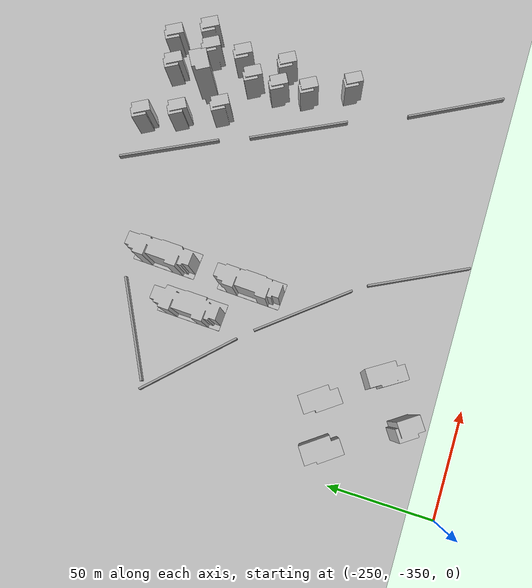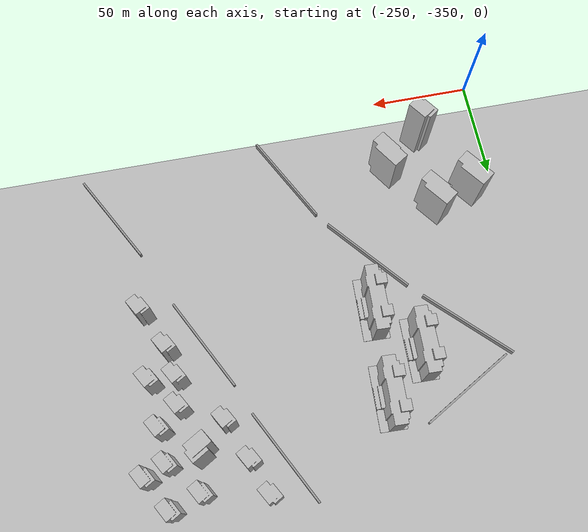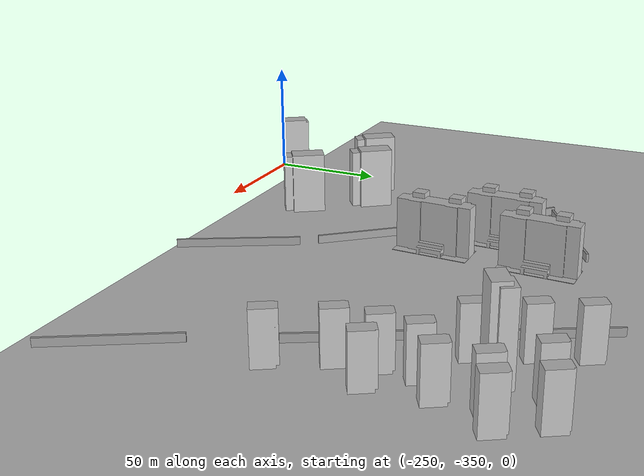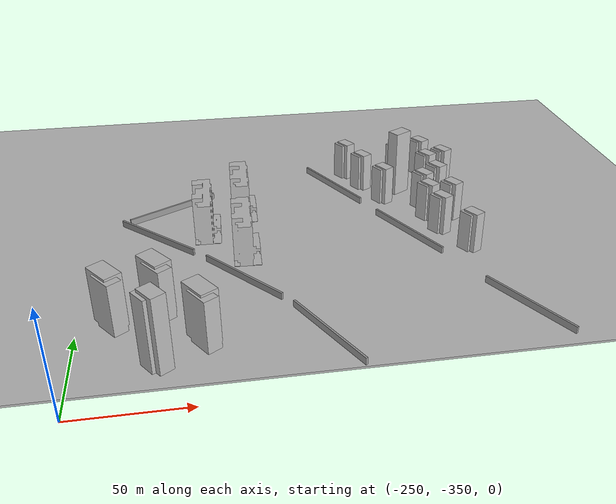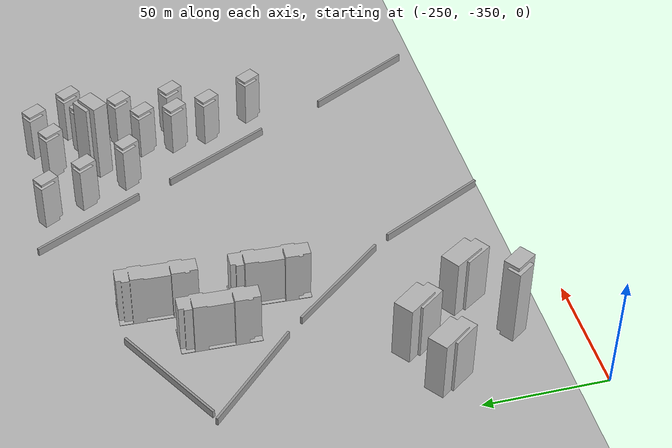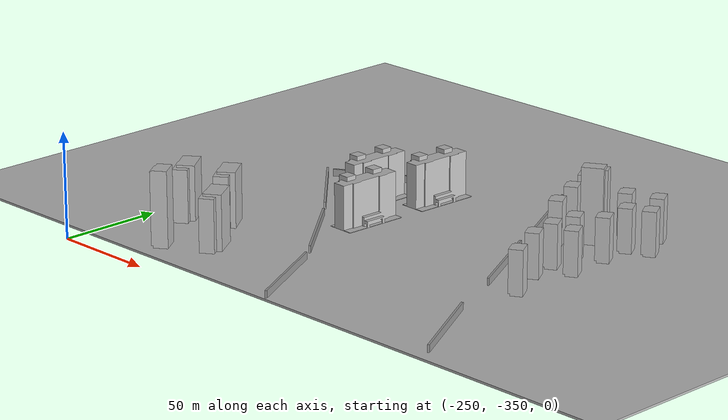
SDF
<sdf version="1.7">
 <world name="default">
  <model name="ground_plane">
   <static>1</static>
   <link name="link">
    <collision name="collision">
     <geometry><mesh><uri>model://ground_plane/scripts/plane.dae</uri><normal>0 0 1</normal></mesh></geometry>
     <surface><friction><ode><mu>100</mu><mu2>50</mu2></ode></friction></surface>
    </collision>
    <visual name="visual">
     <geometry><mesh><uri>model://ground_plane/scripts/plane.dae</uri><normal>0 0 1</normal></mesh></geometry>
     <material>
      <lighting>1</lighting>
      <script><uri>model://ground_plane/scripts/plane.jpg</uri><name>__default__</name></script>
      <shader type="pixel"/>
     </material>
    </visual>
   </link>
  </model>
  <model name="apartment4_clone_55">
   <static>1</static>
   <link name="link_0">
    <inertial>
     <mass>1</mass>
     <inertia>
      <ixx>0.166667</ixx>
      <ixy>0</ixy>
      <ixz>0</ixz>
      <iyy>0.166667</iyy>
      <iyz>0</iyz>
      <izz>0.166667</izz>
     </inertia>
    </inertial>
    <pose>1e-06 -0 0 0 -0 0</pose>
    <visual name="visual">
     <geometry>
      <mesh><uri>model://apartment4/scripts/apartment1.dae</uri><scale>0.14 0.14 0.175</scale></mesh>
     </geometry>
     <material>
      <lighting>1</lighting>
      <script><uri>model://apartment4/scripts/apartment1.jpg</uri><name>__default__</name></script>
      <shader type="pixel"/>
     </material>
    </visual>
    <collision name="collision">
     <geometry>
      <mesh><uri>model://apartment4/scripts/apartment1.dae</uri><scale>0.14 0.14 0.175</scale></mesh>
     </geometry>
     <surface>
      <friction>
       <ode><mu>1</mu><mu2>1</mu2><fdir1>0 0 0</fdir1><slip1>0</slip1><slip2>0</slip2></ode>
       <torsional>
        <coefficient>1</coefficient>
        <patch_radius>0</patch_radius>
        <surface_radius>0</surface_radius>
        <use_patch_radius>1</use_patch_radius>
        <ode><slip>0</slip></ode>
       </torsional>
      </friction>
      <bounce><restitution_coefficient>0</restitution_coefficient><threshold>1e+06</threshold></bounce>
      <contact>
       <collide_without_contact>0</collide_without_contact>
       <collide_without_contact_bitmask>1</collide_without_contact_bitmask>
       <collide_bitmask>1</collide_bitmask>
       <ode>
        <soft_cfm>0</soft_cfm>
        <soft_erp>0.2</soft_erp>
        <kp>1e+13</kp>
        <kd>1</kd>
        <max_vel>0.01</max_vel>
        <min_depth>0</min_depth>
       </ode>
       <bullet>
        <split_impulse>1</split_impulse>
        <split_impulse_penetration_threshold>-0.01</split_impulse_penetration_threshold>
        <soft_cfm>0</soft_cfm>
        <soft_erp>0.2</soft_erp>
        <kp>1e+13</kp>
        <kd>1</kd>
       </bullet>
      </contact>
     </surface>
    </collision>
   </link>
   <static>0</static>
   <pose>-55.9109 -178.593 0 0 -0 0.524325</pose>
  </model>
  <model name="apartment4_clone_56">
   <static>1</static>
   <link name="link_0">
    <inertial>
     <mass>1</mass>
     <inertia>
      <ixx>0.166667</ixx>
      <ixy>0</ixy>
      <ixz>0</ixz>
      <iyy>0.166667</iyy>
      <iyz>0</iyz>
      <izz>0.166667</izz>
     </inertia>
    </inertial>
    <pose>1e-06 -0 0 0 -0 0</pose>
    <visual name="visual">
     <geometry>
      <mesh><uri>model://apartment4/scripts/apartment1.dae</uri><scale>0.14 0.14 0.175</scale></mesh>
     </geometry>
     <material>
      <lighting>1</lighting>
      <script><uri>model://apartment4/scripts/apartment1.jpg</uri><name>__default__</name></script>
      <shader type="pixel"/>
     </material>
    </visual>
    <collision name="collision">
     <geometry>
      <mesh><uri>model://apartment4/scripts/apartment1.dae</uri><scale>0.14 0.14 0.175</scale></mesh>
     </geometry>
     <surface>
      <friction>
       <ode><mu>1</mu><mu2>1</mu2><fdir1>0 0 0</fdir1><slip1>0</slip1><slip2>0</slip2></ode>
       <torsional>
        <coefficient>1</coefficient>
        <patch_radius>0</patch_radius>
        <surface_radius>0</surface_radius>
        <use_patch_radius>1</use_patch_radius>
        <ode><slip>0</slip></ode>
       </torsional>
      </friction>
      <bounce><restitution_coefficient>0</restitution_coefficient><threshold>1e+06</threshold></bounce>
      <contact>
       <collide_without_contact>0</collide_without_contact>
       <collide_without_contact_bitmask>1</collide_without_contact_bitmask>
       <collide_bitmask>1</collide_bitmask>
       <ode>
        <soft_cfm>0</soft_cfm>
        <soft_erp>0.2</soft_erp>
        <kp>1e+13</kp>
        <kd>1</kd>
        <max_vel>0.01</max_vel>
        <min_depth>0</min_depth>
       </ode>
       <bullet>
        <split_impulse>1</split_impulse>
        <split_impulse_penetration_threshold>-0.01</split_impulse_penetration_threshold>
        <soft_cfm>0</soft_cfm>
        <soft_erp>0.2</soft_erp>
        <kp>1e+13</kp>
        <kd>1</kd>
       </bullet>
      </contact>
     </surface>
    </collision>
   </link>
   <static>0</static>
   <pose>-64.9559 -163.01 0 0 -0 0.524325</pose>
  </model>
  <model name="apartment4_clone_62">
   <static>1</static>
   <link name="link_0">
    <inertial>
     <mass>1</mass>
     <inertia>
      <ixx>0.166667</ixx>
      <ixy>0</ixy>
      <ixz>0</ixz>
      <iyy>0.166667</iyy>
      <iyz>0</iyz>
      <izz>0.166667</izz>
     </inertia>
    </inertial>
    <pose>1e-06 -0 0 0 -0 0</pose>
    <visual name="visual">
     <geometry>
      <mesh><uri>model://apartment4/scripts/apartment1.dae</uri><scale>0.14 0.14 0.175</scale></mesh>
     </geometry>
     <material>
      <lighting>1</lighting>
      <script><uri>model://apartment4/scripts/apartment1.jpg</uri><name>__default__</name></script>
      <shader type="pixel"/>
     </material>
    </visual>
    <collision name="collision">
     <geometry>
      <mesh><uri>model://apartment4/scripts/apartment1.dae</uri><scale>0.14 0.14 0.175</scale></mesh>
     </geometry>
     <surface>
      <friction>
       <ode><mu>1</mu><mu2>1</mu2><fdir1>0 0 0</fdir1><slip1>0</slip1><slip2>0</slip2></ode>
       <torsional>
        <coefficient>1</coefficient>
        <patch_radius>0</patch_radius>
        <surface_radius>0</surface_radius>
        <use_patch_radius>1</use_patch_radius>
        <ode><slip>0</slip></ode>
       </torsional>
      </friction>
      <bounce><restitution_coefficient>0</restitution_coefficient><threshold>1e+06</threshold></bounce>
      <contact>
       <collide_without_contact>0</collide_without_contact>
       <collide_without_contact_bitmask>1</collide_without_contact_bitmask>
       <collide_bitmask>1</collide_bitmask>
       <ode>
        <soft_cfm>0</soft_cfm>
        <soft_erp>0.2</soft_erp>
        <kp>1e+13</kp>
        <kd>1</kd>
        <max_vel>0.01</max_vel>
        <min_depth>0</min_depth>
       </ode>
       <bullet>
        <split_impulse>1</split_impulse>
        <split_impulse_penetration_threshold>-0.01</split_impulse_penetration_threshold>
        <soft_cfm>0</soft_cfm>
        <soft_erp>0.2</soft_erp>
        <kp>1e+13</kp>
        <kd>1</kd>
       </bullet>
      </contact>
     </surface>
    </collision>
   </link>
   <static>0</static>
   <pose>-63.3477 -255.633 0 0 -0 0.524325</pose>
  </model>
  <model name="apartment4_clone_63">
   <static>1</static>
   <link name="link_0">
    <inertial>
     <mass>1</mass>
     <inertia>
      <ixx>0.166667</ixx>
      <ixy>0</ixy>
      <ixz>0</ixz>
      <iyy>0.166667</iyy>
      <iyz>0</iyz>
      <izz>0.166667</izz>
     </inertia>
    </inertial>
    <pose>1e-06 -0 0 0 -0 0</pose>
    <visual name="visual">
     <geometry>
      <mesh><uri>model://apartment4/scripts/apartment1.dae</uri><scale>0.14 0.14 0.175</scale></mesh>
     </geometry>
     <material>
      <lighting>1</lighting>
      <script><uri>model://apartment4/scripts/apartment1.jpg</uri><name>__default__</name></script>
      <shader type="pixel"/>
     </material>
    </visual>
    <collision name="collision">
     <geometry>
      <mesh><uri>model://apartment4/scripts/apartment1.dae</uri><scale>0.14 0.14 0.175</scale></mesh>
     </geometry>
     <surface>
      <friction>
       <ode><mu>1</mu><mu2>1</mu2><fdir1>0 0 0</fdir1><slip1>0</slip1><slip2>0</slip2></ode>
       <torsional>
        <coefficient>1</coefficient>
        <patch_radius>0</patch_radius>
        <surface_radius>0</surface_radius>
        <use_patch_radius>1</use_patch_radius>
        <ode><slip>0</slip></ode>
       </torsional>
      </friction>
      <bounce><restitution_coefficient>0</restitution_coefficient><threshold>1e+06</threshold></bounce>
      <contact>
       <collide_without_contact>0</collide_without_contact>
       <collide_without_contact_bitmask>1</collide_without_contact_bitmask>
       <collide_bitmask>1</collide_bitmask>
       <ode>
        <soft_cfm>0</soft_cfm>
        <soft_erp>0.2</soft_erp>
        <kp>1e+13</kp>
        <kd>1</kd>
        <max_vel>0.01</max_vel>
        <min_depth>0</min_depth>
       </ode>
       <bullet>
        <split_impulse>1</split_impulse>
        <split_impulse_penetration_threshold>-0.01</split_impulse_penetration_threshold>
        <soft_cfm>0</soft_cfm>
        <soft_erp>0.2</soft_erp>
        <kp>1e+13</kp>
        <kd>1</kd>
       </bullet>
      </contact>
     </surface>
    </collision>
   </link>
   <static>0</static>
   <pose>-72.7914 -235.527 0 0 -0 0.524325</pose>
  </model>
  <model name="apartment4_clone_64">
   <static>1</static>
   <link name="link_0">
    <inertial>
     <mass>1</mass>
     <inertia>
      <ixx>0.166667</ixx>
      <ixy>0</ixy>
      <ixz>0</ixz>
      <iyy>0.166667</iyy>
      <iyz>0</iyz>
      <izz>0.166667</izz>
     </inertia>
    </inertial>
    <pose>1e-06 -0 0 0 -0 0</pose>
    <visual name="visual">
     <geometry>
      <mesh><uri>model://apartment4/scripts/apartment1.dae</uri><scale>0.14 0.14 0.175</scale></mesh>
     </geometry>
     <material>
      <lighting>1</lighting>
      <script><uri>model://apartment4/scripts/apartment1.jpg</uri><name>__default__</name></script>
      <shader type="pixel"/>
     </material>
    </visual>
    <collision name="collision">
     <geometry>
      <mesh><uri>model://apartment4/scripts/apartment1.dae</uri><scale>0.14 0.14 0.175</scale></mesh>
     </geometry>
     <surface>
      <friction>
       <ode><mu>1</mu><mu2>1</mu2><fdir1>0 0 0</fdir1><slip1>0</slip1><slip2>0</slip2></ode>
       <torsional>
        <coefficient>1</coefficient>
        <patch_radius>0</patch_radius>
        <surface_radius>0</surface_radius>
        <use_patch_radius>1</use_patch_radius>
        <ode><slip>0</slip></ode>
       </torsional>
      </friction>
      <bounce><restitution_coefficient>0</restitution_coefficient><threshold>1e+06</threshold></bounce>
      <contact>
       <collide_without_contact>0</collide_without_contact>
       <collide_without_contact_bitmask>1</collide_without_contact_bitmask>
       <collide_bitmask>1</collide_bitmask>
       <ode>
        <soft_cfm>0</soft_cfm>
        <soft_erp>0.2</soft_erp>
        <kp>1e+13</kp>
        <kd>1</kd>
        <max_vel>0.01</max_vel>
        <min_depth>0</min_depth>
       </ode>
       <bullet>
        <split_impulse>1</split_impulse>
        <split_impulse_penetration_threshold>-0.01</split_impulse_penetration_threshold>
        <soft_cfm>0</soft_cfm>
        <soft_erp>0.2</soft_erp>
        <kp>1e+13</kp>
        <kd>1</kd>
       </bullet>
      </contact>
     </surface>
    </collision>
   </link>
   <static>0</static>
   <pose>-75.3967 -220.997 0 0 -0 0.524325</pose>
  </model>
  <model name="apartment4_clone_65">
   <static>1</static>
   <link name="link_0">
    <inertial>
     <mass>1</mass>
     <inertia>
      <ixx>0.166667</ixx>
      <ixy>0</ixy>
      <ixz>0</ixz>
      <iyy>0.166667</iyy>
      <iyz>0</iyz>
      <izz>0.166667</izz>
     </inertia>
    </inertial>
    <pose>1e-06 -0 0 0 -0 0</pose>
    <visual name="visual">
     <geometry>
      <mesh><uri>model://apartment4/scripts/apartment1.dae</uri><scale>0.14 0.14 0.175</scale></mesh>
     </geometry>
     <material>
      <lighting>1</lighting>
      <script><uri>model://apartment4/scripts/apartment1.jpg</uri><name>__default__</name></script>
      <shader type="pixel"/>
     </material>
    </visual>
    <collision name="collision">
     <geometry>
      <mesh><uri>model://apartment4/scripts/apartment1.dae</uri><scale>0.14 0.14 0.175</scale></mesh>
     </geometry>
     <surface>
      <friction>
       <ode><mu>1</mu><mu2>1</mu2><fdir1>0 0 0</fdir1><slip1>0</slip1><slip2>0</slip2></ode>
       <torsional>
        <coefficient>1</coefficient>
        <patch_radius>0</patch_radius>
        <surface_radius>0</surface_radius>
        <use_patch_radius>1</use_patch_radius>
        <ode><slip>0</slip></ode>
       </torsional>
      </friction>
      <bounce><restitution_coefficient>0</restitution_coefficient><threshold>1e+06</threshold></bounce>
      <contact>
       <collide_without_contact>0</collide_without_contact>
       <collide_without_contact_bitmask>1</collide_without_contact_bitmask>
       <collide_bitmask>1</collide_bitmask>
       <ode>
        <soft_cfm>0</soft_cfm>
        <soft_erp>0.2</soft_erp>
        <kp>1e+13</kp>
        <kd>1</kd>
        <max_vel>0.01</max_vel>
        <min_depth>0</min_depth>
       </ode>
       <bullet>
        <split_impulse>1</split_impulse>
        <split_impulse_penetration_threshold>-0.01</split_impulse_penetration_threshold>
        <soft_cfm>0</soft_cfm>
        <soft_erp>0.2</soft_erp>
        <kp>1e+13</kp>
        <kd>1</kd>
       </bullet>
      </contact>
     </surface>
    </collision>
   </link>
   <static>0</static>
   <pose>-94.4173 -197.218 0 0 -0 0.524325</pose>
  </model>
  <model name="apartment4_clone_66">
   <static>1</static>
   <link name="link_0">
    <inertial>
     <mass>1</mass>
     <inertia>
      <ixx>0.166667</ixx>
      <ixy>0</ixy>
      <ixz>0</ixz>
      <iyy>0.166667</iyy>
      <iyz>0</iyz>
      <izz>0.166667</izz>
     </inertia>
    </inertial>
    <pose>1e-06 -0 0 0 -0 0</pose>
    <visual name="visual">
     <geometry>
      <mesh><uri>model://apartment4/scripts/apartment1.dae</uri><scale>0.14 0.14 0.175</scale></mesh>
     </geometry>
     <material>
      <lighting>1</lighting>
      <script><uri>model://apartment4/scripts/apartment1.jpg</uri><name>__default__</name></script>
      <shader type="pixel"/>
     </material>
    </visual>
    <collision name="collision">
     <geometry>
      <mesh><uri>model://apartment4/scripts/apartment1.dae</uri><scale>0.14 0.14 0.175</scale></mesh>
     </geometry>
     <surface>
      <friction>
       <ode><mu>1</mu><mu2>1</mu2><fdir1>0 0 0</fdir1><slip1>0</slip1><slip2>0</slip2></ode>
       <torsional>
        <coefficient>1</coefficient>
        <patch_radius>0</patch_radius>
        <surface_radius>0</surface_radius>
        <use_patch_radius>1</use_patch_radius>
        <ode><slip>0</slip></ode>
       </torsional>
      </friction>
      <bounce><restitution_coefficient>0</restitution_coefficient><threshold>1e+06</threshold></bounce>
      <contact>
       <collide_without_contact>0</collide_without_contact>
       <collide_without_contact_bitmask>1</collide_without_contact_bitmask>
       <collide_bitmask>1</collide_bitmask>
       <ode>
        <soft_cfm>0</soft_cfm>
        <soft_erp>0.2</soft_erp>
        <kp>1e+13</kp>
        <kd>1</kd>
        <max_vel>0.01</max_vel>
        <min_depth>0</min_depth>
       </ode>
       <bullet>
        <split_impulse>1</split_impulse>
        <split_impulse_penetration_threshold>-0.01</split_impulse_penetration_threshold>
        <soft_cfm>0</soft_cfm>
        <soft_erp>0.2</soft_erp>
        <kp>1e+13</kp>
        <kd>1</kd>
       </bullet>
      </contact>
     </surface>
    </collision>
   </link>
   <static>0</static>
   <pose>-102.556 -178.199 0 0 -0 0.524325</pose>
  </model>
  <model name="apartment4_clone_67">
   <static>1</static>
   <link name="link_0">
    <inertial>
     <mass>1</mass>
     <inertia>
      <ixx>0.166667</ixx>
      <ixy>0</ixy>
      <ixz>0</ixz>
      <iyy>0.166667</iyy>
      <iyz>0</iyz>
      <izz>0.166667</izz>
     </inertia>
    </inertial>
    <pose>1e-06 -0 0 0 -0 0</pose>
    <visual name="visual">
     <geometry>
      <mesh><uri>model://apartment4/scripts/apartment1.dae</uri><scale>0.14 0.14 0.175</scale></mesh>
     </geometry>
     <material>
      <lighting>1</lighting>
      <script><uri>model://apartment4/scripts/apartment1.jpg</uri><name>__default__</name></script>
      <shader type="pixel"/>
     </material>
    </visual>
    <collision name="collision">
     <geometry>
      <mesh><uri>model://apartment4/scripts/apartment1.dae</uri><scale>0.14 0.14 0.175</scale></mesh>
     </geometry>
     <surface>
      <friction>
       <ode><mu>1</mu><mu2>1</mu2><fdir1>0 0 0</fdir1><slip1>0</slip1><slip2>0</slip2></ode>
       <torsional>
        <coefficient>1</coefficient>
        <patch_radius>0</patch_radius>
        <surface_radius>0</surface_radius>
        <use_patch_radius>1</use_patch_radius>
        <ode><slip>0</slip></ode>
       </torsional>
      </friction>
      <bounce><restitution_coefficient>0</restitution_coefficient><threshold>1e+06</threshold></bounce>
      <contact>
       <collide_without_contact>0</collide_without_contact>
       <collide_without_contact_bitmask>1</collide_without_contact_bitmask>
       <collide_bitmask>1</collide_bitmask>
       <ode>
        <soft_cfm>0</soft_cfm>
        <soft_erp>0.2</soft_erp>
        <kp>1e+13</kp>
        <kd>1</kd>
        <max_vel>0.01</max_vel>
        <min_depth>0</min_depth>
       </ode>
       <bullet>
        <split_impulse>1</split_impulse>
        <split_impulse_penetration_threshold>-0.01</split_impulse_penetration_threshold>
        <soft_cfm>0</soft_cfm>
        <soft_erp>0.2</soft_erp>
        <kp>1e+13</kp>
        <kd>1</kd>
       </bullet>
      </contact>
     </surface>
    </collision>
   </link>
   <static>0</static>
   <pose>-108.98 -161.791 0 0 -0 0.524325</pose>
  </model>
  <model name="apartment4_clone_69">
   <static>1</static>
   <link name="link_0">
    <inertial>
     <mass>1</mass>
     <inertia>
      <ixx>0.166667</ixx>
      <ixy>0</ixy>
      <ixz>0</ixz>
      <iyy>0.166667</iyy>
      <iyz>0</iyz>
      <izz>0.166667</izz>
     </inertia>
    </inertial>
    <pose>1e-06 -0 0 0 -0 0</pose>
    <visual name="visual">
     <geometry>
      <mesh><uri>model://apartment4/scripts/apartment1.dae</uri><scale>0.14 0.14 0.175</scale></mesh>
     </geometry>
     <material>
      <lighting>1</lighting>
      <script><uri>model://apartment4/scripts/apartment1.jpg</uri><name>__default__</name></script>
      <shader type="pixel"/>
     </material>
    </visual>
    <collision name="collision">
     <geometry>
      <mesh><uri>model://apartment4/scripts/apartment1.dae</uri><scale>0.14 0.14 0.175</scale></mesh>
     </geometry>
     <surface>
      <friction>
       <ode><mu>1</mu><mu2>1</mu2><fdir1>0 0 0</fdir1><slip1>0</slip1><slip2>0</slip2></ode>
       <torsional>
        <coefficient>1</coefficient>
        <patch_radius>0</patch_radius>
        <surface_radius>0</surface_radius>
        <use_patch_radius>1</use_patch_radius>
        <ode><slip>0</slip></ode>
       </torsional>
      </friction>
      <bounce><restitution_coefficient>0</restitution_coefficient><threshold>1e+06</threshold></bounce>
      <contact>
       <collide_without_contact>0</collide_without_contact>
       <collide_without_contact_bitmask>1</collide_without_contact_bitmask>
       <collide_bitmask>1</collide_bitmask>
       <ode>
        <soft_cfm>0</soft_cfm>
        <soft_erp>0.2</soft_erp>
        <kp>1e+13</kp>
        <kd>1</kd>
        <max_vel>0.01</max_vel>
        <min_depth>0</min_depth>
       </ode>
       <bullet>
        <split_impulse>1</split_impulse>
        <split_impulse_penetration_threshold>-0.01</split_impulse_penetration_threshold>
        <soft_cfm>0</soft_cfm>
        <soft_erp>0.2</soft_erp>
        <kp>1e+13</kp>
        <kd>1</kd>
       </bullet>
      </contact>
     </surface>
    </collision>
   </link>
   <static>0</static>
   <pose>-79.6051 -167.798 0 0 -0 0.524325</pose>
  </model>
  <model name="apartment4_clone_72">
   <static>1</static>
   <link name="link_0">
    <inertial>
     <mass>1</mass>
     <inertia>
      <ixx>0.166667</ixx>
      <ixy>0</ixy>
      <ixz>0</ixz>
      <iyy>0.166667</iyy>
      <iyz>0</iyz>
      <izz>0.166667</izz>
     </inertia>
    </inertial>
    <pose>1e-06 -0 0 0 -0 0</pose>
    <visual name="visual">
     <geometry>
      <mesh><uri>model://apartment4/scripts/apartment1.dae</uri><scale>0.14 0.14 0.175</scale></mesh>
     </geometry>
     <material>
      <lighting>1</lighting>
      <script><uri>model://apartment4/scripts/apartment1.jpg</uri><name>__default__</name></script>
      <shader type="pixel"/>
     </material>
    </visual>
    <collision name="collision">
     <geometry>
      <mesh><uri>model://apartment4/scripts/apartment1.dae</uri><scale>0.14 0.14 0.175</scale></mesh>
     </geometry>
     <surface>
      <friction>
       <ode><mu>1</mu><mu2>1</mu2><fdir1>0 0 0</fdir1><slip1>0</slip1><slip2>0</slip2></ode>
       <torsional>
        <coefficient>1</coefficient>
        <patch_radius>0</patch_radius>
        <surface_radius>0</surface_radius>
        <use_patch_radius>1</use_patch_radius>
        <ode><slip>0</slip></ode>
       </torsional>
      </friction>
      <bounce><restitution_coefficient>0</restitution_coefficient><threshold>1e+06</threshold></bounce>
      <contact>
       <collide_without_contact>0</collide_without_contact>
       <collide_without_contact_bitmask>1</collide_without_contact_bitmask>
       <collide_bitmask>1</collide_bitmask>
       <ode>
        <soft_cfm>0</soft_cfm>
        <soft_erp>0.2</soft_erp>
        <kp>1e+13</kp>
        <kd>1</kd>
        <max_vel>0.01</max_vel>
        <min_depth>0</min_depth>
       </ode>
       <bullet>
        <split_impulse>1</split_impulse>
        <split_impulse_penetration_threshold>-0.01</split_impulse_penetration_threshold>
        <soft_cfm>0</soft_cfm>
        <soft_erp>0.2</soft_erp>
        <kp>1e+13</kp>
        <kd>1</kd>
       </bullet>
      </contact>
     </surface>
    </collision>
   </link>
   <static>0</static>
   <pose>-74.6976 -207.39 0 0 -0 0.524325</pose>
  </model>
  <model name="apartment4_clone_73">
   <static>1</static>
   <link name="link_0">
    <inertial>
     <mass>1</mass>
     <inertia>
      <ixx>0.166667</ixx>
      <ixy>0</ixy>
      <ixz>0</ixz>
      <iyy>0.166667</iyy>
      <iyz>0</iyz>
      <izz>0.166667</izz>
     </inertia>
    </inertial>
    <pose>1e-06 -0 0 0 -0 0</pose>
    <visual name="visual">
     <geometry>
      <mesh><uri>model://apartment4/scripts/apartment1.dae</uri><scale>0.14 0.14 0.175</scale></mesh>
     </geometry>
     <material>
      <lighting>1</lighting>
      <script><uri>model://apartment4/scripts/apartment1.jpg</uri><name>__default__</name></script>
      <shader type="pixel"/>
     </material>
    </visual>
    <collision name="collision">
     <geometry>
      <mesh><uri>model://apartment4/scripts/apartment1.dae</uri><scale>0.14 0.14 0.175</scale></mesh>
     </geometry>
     <surface>
      <friction>
       <ode><mu>1</mu><mu2>1</mu2><fdir1>0 0 0</fdir1><slip1>0</slip1><slip2>0</slip2></ode>
       <torsional>
        <coefficient>1</coefficient>
        <patch_radius>0</patch_radius>
        <surface_radius>0</surface_radius>
        <use_patch_radius>1</use_patch_radius>
        <ode><slip>0</slip></ode>
       </torsional>
      </friction>
      <bounce><restitution_coefficient>0</restitution_coefficient><threshold>1e+06</threshold></bounce>
      <contact>
       <collide_without_contact>0</collide_without_contact>
       <collide_without_contact_bitmask>1</collide_without_contact_bitmask>
       <collide_bitmask>1</collide_bitmask>
       <ode>
        <soft_cfm>0</soft_cfm>
        <soft_erp>0.2</soft_erp>
        <kp>1e+13</kp>
        <kd>1</kd>
        <max_vel>0.01</max_vel>
        <min_depth>0</min_depth>
       </ode>
       <bullet>
        <split_impulse>1</split_impulse>
        <split_impulse_penetration_threshold>-0.01</split_impulse_penetration_threshold>
        <soft_cfm>0</soft_cfm>
        <soft_erp>0.2</soft_erp>
        <kp>1e+13</kp>
        <kd>1</kd>
       </bullet>
      </contact>
     </surface>
    </collision>
   </link>
   <static>0</static>
   <pose>-62.9649 -221.452 0 0 -0 0.524325</pose>
  </model>
  <model name="apartment4_clone_83">
   <static>1</static>
   <link name="link_0">
    <inertial>
     <mass>1</mass>
     <inertia>
      <ixx>0.166667</ixx>
      <ixy>0</ixy>
      <ixz>0</ixz>
      <iyy>0.166667</iyy>
      <iyz>0</iyz>
      <izz>0.166667</izz>
     </inertia>
    </inertial>
    <pose>1e-06 -0 0 0 -0 0</pose>
    <visual name="visual">
     <geometry>
      <mesh><uri>model://apartment4/scripts/apartment1.dae</uri><scale>0.14 0.14 0.175</scale></mesh>
     </geometry>
     <material>
      <lighting>1</lighting>
      <script><uri>model://apartment4/scripts/apartment1.jpg</uri><name>__default__</name></script>
      <shader type="pixel"/>
     </material>
    </visual>
    <collision name="collision">
     <geometry>
      <mesh><uri>model://apartment4/scripts/apartment1.dae</uri><scale>0.14 0.14 0.175</scale></mesh>
     </geometry>
     <surface>
      <friction>
       <ode><mu>1</mu><mu2>1</mu2><fdir1>0 0 0</fdir1><slip1>0</slip1><slip2>0</slip2></ode>
       <torsional>
        <coefficient>1</coefficient>
        <patch_radius>0</patch_radius>
        <surface_radius>0</surface_radius>
        <use_patch_radius>1</use_patch_radius>
        <ode><slip>0</slip></ode>
       </torsional>
      </friction>
      <bounce><restitution_coefficient>0</restitution_coefficient><threshold>1e+06</threshold></bounce>
      <contact>
       <collide_without_contact>0</collide_without_contact>
       <collide_without_contact_bitmask>1</collide_without_contact_bitmask>
       <collide_bitmask>1</collide_bitmask>
       <ode>
        <soft_cfm>0</soft_cfm>
        <soft_erp>0.2</soft_erp>
        <kp>1e+13</kp>
        <kd>1</kd>
        <max_vel>0.01</max_vel>
        <min_depth>0</min_depth>
       </ode>
       <bullet>
        <split_impulse>1</split_impulse>
        <split_impulse_penetration_threshold>-0.01</split_impulse_penetration_threshold>
        <soft_cfm>0</soft_cfm>
        <soft_erp>0.2</soft_erp>
        <kp>1e+13</kp>
        <kd>1</kd>
       </bullet>
      </contact>
     </surface>
    </collision>
   </link>
   <static>0</static>
   <pose>-66.1605 -182.887 0 0 -0 0.524325</pose>
  </model>
  <model name="apartment4_clone_84">
   <static>1</static>
   <link name="link_0">
    <inertial>
     <mass>1</mass>
     <inertia>
      <ixx>0.166667</ixx>
      <ixy>0</ixy>
      <ixz>0</ixz>
      <iyy>0.166667</iyy>
      <iyz>0</iyz>
      <izz>0.166667</izz>
     </inertia>
    </inertial>
    <pose>1e-06 -0 0 0 -0 0</pose>
    <visual name="visual">
     <geometry>
      <mesh><uri>model://apartment4/scripts/apartment1.dae</uri><scale>0.14 0.14 0.175</scale></mesh>
     </geometry>
     <material>
      <lighting>1</lighting>
      <script><uri>model://apartment4/scripts/apartment1.jpg</uri><name>__default__</name></script>
      <shader type="pixel"/>
     </material>
    </visual>
    <collision name="collision">
     <geometry>
      <mesh><uri>model://apartment4/scripts/apartment1.dae</uri><scale>0.14 0.14 0.175</scale></mesh>
     </geometry>
     <surface>
      <friction>
       <ode><mu>1</mu><mu2>1</mu2><fdir1>0 0 0</fdir1><slip1>0</slip1><slip2>0</slip2></ode>
       <torsional>
        <coefficient>1</coefficient>
        <patch_radius>0</patch_radius>
        <surface_radius>0</surface_radius>
        <use_patch_radius>1</use_patch_radius>
        <ode><slip>0</slip></ode>
       </torsional>
      </friction>
      <bounce><restitution_coefficient>0</restitution_coefficient><threshold>1e+06</threshold></bounce>
      <contact>
       <collide_without_contact>0</collide_without_contact>
       <collide_without_contact_bitmask>1</collide_without_contact_bitmask>
       <collide_bitmask>1</collide_bitmask>
       <ode>
        <soft_cfm>0</soft_cfm>
        <soft_erp>0.2</soft_erp>
        <kp>1e+13</kp>
        <kd>1</kd>
        <max_vel>0.01</max_vel>
        <min_depth>0</min_depth>
       </ode>
       <bullet>
        <split_impulse>1</split_impulse>
        <split_impulse_penetration_threshold>-0.01</split_impulse_penetration_threshold>
        <soft_cfm>0</soft_cfm>
        <soft_erp>0.2</soft_erp>
        <kp>1e+13</kp>
        <kd>1</kd>
       </bullet>
      </contact>
     </surface>
    </collision>
   </link>
   <static>0</static>
   <pose>-64.8141 -199.07 0 0 -0 0.524325</pose>
  </model>
  <model name="grey_wall">
   <static>1</static>
   <link name="link">
    <pose>0 0 1.4 0 -0 0</pose>
    <collision name="collision"><geometry><box><size>50.5 1 4</size></box></geometry></collision>
    <visual name="visual">
     <cast_shadows>0</cast_shadows>
     <geometry><box><size>50.5 1 4</size></box></geometry>
     <material>
      <script>
       <uri>model://grey_wall/materials/scripts</uri>
       <uri>model://grey_wall/materials/textures</uri>
       <name>vrc/grey_wall</name>
      </script>
     </material>
    </visual>
   </link>
   <pose>-54.3645 -308.73 0 0 -0 2.06942</pose>
  </model>
  <model name="grey_wall_clone">
   <static>1</static>
   <link name="link">
    <pose>0 0 1.4 0 -0 0</pose>
    <collision name="collision"><geometry><box><size>50.5 1 4</size></box></geometry></collision>
    <visual name="visual">
     <cast_shadows>0</cast_shadows>
     <geometry><box><size>50.5 1 4</size></box></geometry>
     <material>
      <script>
       <uri>model://grey_wall/materials/scripts</uri>
       <uri>model://grey_wall/materials/textures</uri>
       <name>vrc/grey_wall</name>
      </script>
     </material>
    </visual>
   </link>
   <pose>-90.2595 -235.673 -0 0 0 -1.09502</pose>
  </model>
  <model name="grey_wall_clone_clone">
   <static>1</static>
   <link name="link">
    <pose>0 0 1.4 0 -0 0</pose>
    <collision name="collision"><geometry><box><size>50.5 1 4</size></box></geometry></collision>
    <visual name="visual">
     <cast_shadows>0</cast_shadows>
     <geometry><box><size>50.5 1 4</size></box></geometry>
     <material>
      <script>
       <uri>model://grey_wall/materials/scripts</uri>
       <uri>model://grey_wall/materials/textures</uri>
       <name>vrc/grey_wall</name>
      </script>
     </material>
    </visual>
   </link>
   <pose>-119.192 -176.455 -0 0 0 -1.09502</pose>
  </model>
  <model name="grey_wall_clone_clone_0">
   <static>1</static>
   <link name="link">
    <pose>0 0 1.4 0 -0 0</pose>
    <collision name="collision"><geometry><box><size>50.5 1 4</size></box></geometry></collision>
    <visual name="visual">
     <cast_shadows>0</cast_shadows>
     <geometry><box><size>50.5 1 4</size></box></geometry>
     <material>
      <script>
       <uri>model://grey_wall/materials/scripts</uri>
       <uri>model://grey_wall/materials/textures</uri>
       <name>vrc/grey_wall</name>
      </script>
     </material>
    </visual>
   </link>
   <pose>-145.2 -314.014 -0 0 0 -1.09502</pose>
  </model>
  <model name="grey_wall_clone_clone_1">
   <static>1</static>
   <link name="link">
    <pose>0 0 1.4 0 -0 0</pose>
    <collision name="collision"><geometry><box><size>50.5 1 4</size></box></geometry></collision>
    <visual name="visual">
     <cast_shadows>0</cast_shadows>
     <geometry><box><size>50.5 1 4</size></box></geometry>
     <material>
      <script>
       <uri>model://grey_wall/materials/scripts</uri>
       <uri>model://grey_wall/materials/textures</uri>
       <name>vrc/grey_wall</name>
      </script>
     </material>
    </visual>
   </link>
   <pose>-177.406 -265.819 0 0 0 -0.878449</pose>
  </model>
  <model name="apartment0_clone_clone_clone_1_clone_clone_1_clone_clone">
   <static>1</static>
   <link name="link_0">
    <inertial>
     <mass>1</mass>
     <inertia>
      <ixx>0.166667</ixx>
      <ixy>0</ixy>
      <ixz>0</ixz>
      <iyy>0.166667</iyy>
      <iyz>0</iyz>
      <izz>0.166667</izz>
     </inertia>
    </inertial>
    <pose>0.000226 2e-06 0 0 -0 0</pose>
    <visual name="visual">
     <geometry>
      <mesh><uri>model://apartment0/scripts/apartment.dae</uri><scale>0.42 0.21 0.14</scale></mesh>
     </geometry>
     <material>
      <lighting>1</lighting>
      <script><uri>model://apartment0/scripts/building.jpg</uri><name>__default__</name></script>
      <shader type="pixel"/>
     </material>
    </visual>
    <collision name="collision">
     <geometry>
      <mesh><uri>model://apartment0/scripts/apartment.dae</uri><scale>0.42 0.21 0.14</scale></mesh>
     </geometry>
     <surface>
      <friction>
       <ode><mu>1</mu><mu2>1</mu2><fdir1>0 0 0</fdir1><slip1>0</slip1><slip2>0</slip2></ode>
       <torsional>
        <coefficient>1</coefficient>
        <patch_radius>0</patch_radius>
        <surface_radius>0</surface_radius>
        <use_patch_radius>1</use_patch_radius>
        <ode><slip>0</slip></ode>
       </torsional>
      </friction>
      <bounce><restitution_coefficient>0</restitution_coefficient><threshold>1e+06</threshold></bounce>
      <contact>
       <collide_without_contact>0</collide_without_contact>
       <collide_without_contact_bitmask>1</collide_without_contact_bitmask>
       <collide_bitmask>1</collide_bitmask>
       <ode>
        <soft_cfm>0</soft_cfm>
        <soft_erp>0.2</soft_erp>
        <kp>1e+13</kp>
        <kd>1</kd>
        <max_vel>0.01</max_vel>
        <min_depth>0</min_depth>
       </ode>
       <bullet>
        <split_impulse>1</split_impulse>
        <split_impulse_penetration_threshold>-0.01</split_impulse_penetration_threshold>
        <soft_cfm>0</soft_cfm>
        <soft_erp>0.2</soft_erp>
        <kp>1e+13</kp>
        <kd>1</kd>
       </bullet>
      </contact>
     </surface>
    </collision>
   </link>
   <static>0</static>
   <pose>-172.477 -194.756 0.2281 0 -0 1.53572</pose>
  </model>
  <model name="apartment0_clone_clone_clone_1_clone_clone_1_clone_clone_0">
   <static>1</static>
   <link name="link_0">
    <inertial>
     <mass>1</mass>
     <inertia>
      <ixx>0.166667</ixx>
      <ixy>0</ixy>
      <ixz>0</ixz>
      <iyy>0.166667</iyy>
      <iyz>0</iyz>
      <izz>0.166667</izz>
     </inertia>
    </inertial>
    <pose>0.000226 2e-06 0 0 -0 0</pose>
    <visual name="visual">
     <geometry>
      <mesh><uri>model://apartment0/scripts/apartment.dae</uri><scale>0.42 0.21 0.14</scale></mesh>
     </geometry>
     <material>
      <lighting>1</lighting>
      <script><uri>model://apartment0/scripts/building.jpg</uri><name>__default__</name></script>
      <shader type="pixel"/>
     </material>
    </visual>
    <collision name="collision">
     <geometry>
      <mesh><uri>model://apartment0/scripts/apartment.dae</uri><scale>0.42 0.21 0.14</scale></mesh>
     </geometry>
     <surface>
      <friction>
       <ode><mu>1</mu><mu2>1</mu2><fdir1>0 0 0</fdir1><slip1>0</slip1><slip2>0</slip2></ode>
       <torsional>
        <coefficient>1</coefficient>
        <patch_radius>0</patch_radius>
        <surface_radius>0</surface_radius>
        <use_patch_radius>1</use_patch_radius>
        <ode><slip>0</slip></ode>
       </torsional>
      </friction>
      <bounce><restitution_coefficient>0</restitution_coefficient><threshold>1e+06</threshold></bounce>
      <contact>
       <collide_without_contact>0</collide_without_contact>
       <collide_without_contact_bitmask>1</collide_without_contact_bitmask>
       <collide_bitmask>1</collide_bitmask>
       <ode>
        <soft_cfm>0</soft_cfm>
        <soft_erp>0.2</soft_erp>
        <kp>1e+13</kp>
        <kd>1</kd>
        <max_vel>0.01</max_vel>
        <min_depth>0</min_depth>
       </ode>
       <bullet>
        <split_impulse>1</split_impulse>
        <split_impulse_penetration_threshold>-0.01</split_impulse_penetration_threshold>
        <soft_cfm>0</soft_cfm>
        <soft_erp>0.2</soft_erp>
        <kp>1e+13</kp>
        <kd>1</kd>
       </bullet>
      </contact>
     </surface>
    </collision>
   </link>
   <static>0</static>
   <pose>-192.565 -214.663 0.2281 0 -0 1.54818</pose>
  </model>
  <model name="grey_wall_clone_clone_clone_clone">
   <static>1</static>
   <link name="link">
    <pose>0 0 1.4 0 -0 0</pose>
    <collision name="collision"><geometry><box><size>50.5 1 4</size></box></geometry></collision>
    <visual name="visual">
     <cast_shadows>0</cast_shadows>
     <geometry><box><size>50.5 1 4</size></box></geometry>
     <material>
      <script>
       <uri>model://grey_wall/materials/scripts</uri>
       <uri>model://grey_wall/materials/textures</uri>
       <name>vrc/grey_wall</name>
      </script>
     </material>
    </visual>
   </link>
   <pose>-209.55 -191.599 0 0 0 -2.62939</pose>
  </model>
  <model name="grey_wall_clone_clone_1_clone">
   <static>1</static>
   <link name="link">
    <pose>0 0 1.4 0 -0 0</pose>
    <collision name="collision"><geometry><box><size>50.5 1 4</size></box></geometry></collision>
    <visual name="visual">
     <cast_shadows>0</cast_shadows>
     <geometry><box><size>50.5 1 4</size></box></geometry>
     <material>
      <script>
       <uri>model://grey_wall/materials/scripts</uri>
       <uri>model://grey_wall/materials/textures</uri>
       <name>vrc/grey_wall</name>
      </script>
     </material>
    </visual>
   </link>
   <pose>-217.366 -222.104 -0 0 0 -0.7845</pose>
  </model>
  <model name="apartment5_clone_0">
   <static>1</static>
   <link name="link_0">
    <inertial>
     <mass>1</mass>
     <inertia>
      <ixx>0.166667</ixx>
      <ixy>0</ixy>
      <ixz>0</ixz>
      <iyy>0.166667</iyy>
      <iyz>0</iyz>
      <izz>0.166667</izz>
     </inertia>
    </inertial>
    <pose>1e-06 -0 0 0 -0 0</pose>
    <visual name="visual">
     <geometry>
      <mesh><uri>model://apartment5/scripts/apartment1.dae</uri><scale>0.35 0.14 0.22</scale></mesh>
     </geometry>
     <material>
      <lighting>1</lighting>
      <script><uri>model://apartment5/scripts/apartment1.jpg</uri><name>__default__</name></script>
      <shader type="pixel"/>
     </material>
    </visual>
    <collision name="collision">
     <geometry>
      <mesh><uri>model://apartment5/scripts/apartment1.dae</uri><scale>0.35 0.14 0.22</scale></mesh>
     </geometry>
     <surface>
      <friction>
       <ode><mu>1</mu><mu2>1</mu2><fdir1>0 0 0</fdir1><slip1>0</slip1><slip2>0</slip2></ode>
       <torsional>
        <coefficient>1</coefficient>
        <patch_radius>0</patch_radius>
        <surface_radius>0</surface_radius>
        <use_patch_radius>1</use_patch_radius>
        <ode><slip>0</slip></ode>
       </torsional>
      </friction>
      <bounce><restitution_coefficient>0</restitution_coefficient><threshold>1e+06</threshold></bounce>
      <contact>
       <collide_without_contact>0</collide_without_contact>
       <collide_without_contact_bitmask>1</collide_without_contact_bitmask>
       <collide_bitmask>1</collide_bitmask>
       <ode>
        <soft_cfm>0</soft_cfm>
        <soft_erp>0.2</soft_erp>
        <kp>1e+13</kp>
        <kd>1</kd>
        <max_vel>0.01</max_vel>
        <min_depth>0</min_depth>
       </ode>
       <bullet>
        <split_impulse>1</split_impulse>
        <split_impulse_penetration_threshold>-0.01</split_impulse_penetration_threshold>
        <soft_cfm>0</soft_cfm>
        <soft_erp>0.2</soft_erp>
        <kp>1e+13</kp>
        <kd>1</kd>
       </bullet>
      </contact>
     </surface>
    </collision>
   </link>
   <static>0</static>
   <pose>-215.521 -283.75 0 0 -0 2.20678</pose>
  </model>
  <model name="apartment5_clone_1">
   <static>1</static>
   <link name="link_0">
    <inertial>
     <mass>1</mass>
     <inertia>
      <ixx>0.166667</ixx>
      <ixy>0</ixy>
      <ixz>0</ixz>
      <iyy>0.166667</iyy>
      <iyz>0</iyz>
      <izz>0.166667</izz>
     </inertia>
    </inertial>
    <pose>1e-06 -0 0 0 -0 0</pose>
    <visual name="visual">
     <geometry>
      <mesh><uri>model://apartment5/scripts/apartment1.dae</uri><scale>0.35 0.14 0.22</scale></mesh>
     </geometry>
     <material>
      <lighting>1</lighting>
      <script><uri>model://apartment5/scripts/apartment1.jpg</uri><name>__default__</name></script>
      <shader type="pixel"/>
     </material>
    </visual>
    <collision name="collision">
     <geometry>
      <mesh><uri>model://apartment5/scripts/apartment1.dae</uri><scale>0.35 0.14 0.22</scale></mesh>
     </geometry>
     <surface>
      <friction>
       <ode><mu>1</mu><mu2>1</mu2><fdir1>0 0 0</fdir1><slip1>0</slip1><slip2>0</slip2></ode>
       <torsional>
        <coefficient>1</coefficient>
        <patch_radius>0</patch_radius>
        <surface_radius>0</surface_radius>
        <use_patch_radius>1</use_patch_radius>
        <ode><slip>0</slip></ode>
       </torsional>
      </friction>
      <bounce><restitution_coefficient>0</restitution_coefficient><threshold>1e+06</threshold></bounce>
      <contact>
       <collide_without_contact>0</collide_without_contact>
       <collide_without_contact_bitmask>1</collide_without_contact_bitmask>
       <collide_bitmask>1</collide_bitmask>
       <ode>
        <soft_cfm>0</soft_cfm>
        <soft_erp>0.2</soft_erp>
        <kp>1e+13</kp>
        <kd>1</kd>
        <max_vel>0.01</max_vel>
        <min_depth>0</min_depth>
       </ode>
       <bullet>
        <split_impulse>1</split_impulse>
        <split_impulse_penetration_threshold>-0.01</split_impulse_penetration_threshold>
        <soft_cfm>0</soft_cfm>
        <soft_erp>0.2</soft_erp>
        <kp>1e+13</kp>
        <kd>1</kd>
       </bullet>
      </contact>
     </surface>
    </collision>
   </link>
   <static>0</static>
   <pose>-196.667 -308.181 0 0 -0 2.14781</pose>
  </model>
  <model name="apartment5_clone_0_clone">
   <static>1</static>
   <link name="link_0">
    <inertial>
     <mass>1</mass>
     <inertia>
      <ixx>0.166667</ixx>
      <ixy>0</ixy>
      <ixz>0</ixz>
      <iyy>0.166667</iyy>
      <iyz>0</iyz>
      <izz>0.166667</izz>
     </inertia>
    </inertial>
    <pose>1e-06 -0 0 0 -0 0</pose>
    <visual name="visual">
     <geometry>
      <mesh><uri>model://apartment5/scripts/apartment1.dae</uri><scale>0.35 0.14 0.22</scale></mesh>
     </geometry>
     <material>
      <lighting>1</lighting>
      <script><uri>model://apartment5/scripts/apartment1.jpg</uri><name>__default__</name></script>
      <shader type="pixel"/>
     </material>
    </visual>
    <collision name="collision">
     <geometry>
      <mesh><uri>model://apartment5/scripts/apartment1.dae</uri><scale>0.35 0.14 0.22</scale></mesh>
     </geometry>
     <surface>
      <friction>
       <ode><mu>1</mu><mu2>1</mu2><fdir1>0 0 0</fdir1><slip1>0</slip1><slip2>0</slip2></ode>
       <torsional>
        <coefficient>1</coefficient>
        <patch_radius>0</patch_radius>
        <surface_radius>0</surface_radius>
        <use_patch_radius>1</use_patch_radius>
        <ode><slip>0</slip></ode>
       </torsional>
      </friction>
      <bounce><restitution_coefficient>0</restitution_coefficient><threshold>1e+06</threshold></bounce>
      <contact>
       <collide_without_contact>0</collide_without_contact>
       <collide_without_contact_bitmask>1</collide_without_contact_bitmask>
       <collide_bitmask>1</collide_bitmask>
       <ode>
        <soft_cfm>0</soft_cfm>
        <soft_erp>0.2</soft_erp>
        <kp>1e+13</kp>
        <kd>1</kd>
        <max_vel>0.01</max_vel>
        <min_depth>0</min_depth>
       </ode>
       <bullet>
        <split_impulse>1</split_impulse>
        <split_impulse_penetration_threshold>-0.01</split_impulse_penetration_threshold>
        <soft_cfm>0</soft_cfm>
        <soft_erp>0.2</soft_erp>
        <kp>1e+13</kp>
        <kd>1</kd>
       </bullet>
      </contact>
     </surface>
    </collision>
   </link>
   <static>0</static>
   <pose>-235.511 -290.438 0 0 -0 2.20678</pose>
  </model>
  <model name="tower_3">
   <static>1</static>
   <link name="link_0">
    <inertial>
     <mass>1</mass>
     <inertia>
      <ixx>0.166667</ixx>
      <ixy>0</ixy>
      <ixz>0</ixz>
      <iyy>0.166667</iyy>
      <iyz>0</iyz>
      <izz>0.166667</izz>
     </inertia>
    </inertial>
    <pose>1e-06 -0 0 0 -0 0</pose>
    <visual name="visual">
     <geometry><mesh><uri>model://tower/scripts/apartment1.dae</uri><scale>0.17 0.17 0.3</scale></mesh></geometry>
     <material>
      <lighting>1</lighting>
      <script><uri>model://tower/scripts/apartment1.jpg</uri><name>__default__</name></script>
      <shader type="pixel"/>
     </material>
    </visual>
    <collision name="collision">
     <geometry><mesh><uri>model://tower/scripts/apartment1.dae</uri><scale>0.17 0.17 0.3</scale></mesh></geometry>
     <surface>
      <friction>
       <ode><mu>1</mu><mu2>1</mu2><fdir1>0 0 0</fdir1><slip1>0</slip1><slip2>0</slip2></ode>
       <torsional>
        <coefficient>1</coefficient>
        <patch_radius>0</patch_radius>
        <surface_radius>0</surface_radius>
        <use_patch_radius>1</use_patch_radius>
        <ode><slip>0</slip></ode>
       </torsional>
      </friction>
      <bounce><restitution_coefficient>0</restitution_coefficient><threshold>1e+06</threshold></bounce>
      <contact>
       <collide_without_contact>0</collide_without_contact>
       <collide_without_contact_bitmask>1</collide_without_contact_bitmask>
       <collide_bitmask>1</collide_bitmask>
       <ode>
        <soft_cfm>0</soft_cfm>
        <soft_erp>0.2</soft_erp>
        <kp>1e+13</kp>
        <kd>1</kd>
        <max_vel>0.01</max_vel>
        <min_depth>0</min_depth>
       </ode>
       <bullet>
        <split_impulse>1</split_impulse>
        <split_impulse_penetration_threshold>-0.01</split_impulse_penetration_threshold>
        <soft_cfm>0</soft_cfm>
        <soft_erp>0.2</soft_erp>
        <kp>1e+13</kp>
        <kd>1</kd>
       </bullet>
      </contact>
     </surface>
    </collision>
   </link>
   <static>0</static>
   <pose>-214.415 -324.159 0 0 -0 0.608695</pose>
  </model>
  <model name="tower_6">
   <static>1</static>
   <link name="link_0">
    <inertial>
     <mass>1</mass>
     <inertia>
      <ixx>0.166667</ixx>
      <ixy>0</ixy>
      <ixz>0</ixz>
      <iyy>0.166667</iyy>
      <iyz>0</iyz>
      <izz>0.166667</izz>
     </inertia>
    </inertial>
    <pose>1e-06 -0 0 0 -0 0</pose>
    <visual name="visual">
     <geometry><mesh><uri>model://tower/scripts/apartment1.dae</uri><scale>0.17 0.17 0.3</scale></mesh></geometry>
     <material>
      <lighting>1</lighting>
      <script><uri>model://tower/scripts/apartment1.jpg</uri><name>__default__</name></script>
      <shader type="pixel"/>
     </material>
    </visual>
    <collision name="collision">
     <geometry><mesh><uri>model://tower/scripts/apartment1.dae</uri><scale>0.17 0.17 0.3</scale></mesh></geometry>
     <surface>
      <friction>
       <ode><mu>1</mu><mu2>1</mu2><fdir1>0 0 0</fdir1><slip1>0</slip1><slip2>0</slip2></ode>
       <torsional>
        <coefficient>1</coefficient>
        <patch_radius>0</patch_radius>
        <surface_radius>0</surface_radius>
        <use_patch_radius>1</use_patch_radius>
        <ode><slip>0</slip></ode>
       </torsional>
      </friction>
      <bounce><restitution_coefficient>0</restitution_coefficient><threshold>1e+06</threshold></bounce>
      <contact>
       <collide_without_contact>0</collide_without_contact>
       <collide_without_contact_bitmask>1</collide_without_contact_bitmask>
       <collide_bitmask>1</collide_bitmask>
       <ode>
        <soft_cfm>0</soft_cfm>
        <soft_erp>0.2</soft_erp>
        <kp>1e+13</kp>
        <kd>1</kd>
        <max_vel>0.01</max_vel>
        <min_depth>0</min_depth>
       </ode>
       <bullet>
        <split_impulse>1</split_impulse>
        <split_impulse_penetration_threshold>-0.01</split_impulse_penetration_threshold>
        <soft_cfm>0</soft_cfm>
        <soft_erp>0.2</soft_erp>
        <kp>1e+13</kp>
        <kd>1</kd>
       </bullet>
      </contact>
     </surface>
    </collision>
   </link>
   <static>0</static>
   <pose>-83.714 -186.025 0 0 0 -1.03896</pose>
  </model>
  <model name="apartment0_clone_clone_clone_1_clone_clone_1_clone_clone_clone">
   <static>1</static>
   <link name="link_0">
    <inertial>
     <mass>1</mass>
     <inertia>
      <ixx>0.166667</ixx>
      <ixy>0</ixy>
      <ixz>0</ixz>
      <iyy>0.166667</iyy>
      <iyz>0</iyz>
      <izz>0.166667</izz>
     </inertia>
    </inertial>
    <pose>0.000226 2e-06 0 0 -0 0</pose>
    <visual name="visual">
     <geometry>
      <mesh><uri>model://apartment0/scripts/apartment.dae</uri><scale>0.42 0.21 0.14</scale></mesh>
     </geometry>
     <material>
      <lighting>1</lighting>
      <script><uri>model://apartment0/scripts/building.jpg</uri><name>__default__</name></script>
      <shader type="pixel"/>
     </material>
    </visual>
    <collision name="collision">
     <geometry>
      <mesh><uri>model://apartment0/scripts/apartment.dae</uri><scale>0.42 0.21 0.14</scale></mesh>
     </geometry>
     <surface>
      <friction>
       <ode><mu>1</mu><mu2>1</mu2><fdir1>0 0 0</fdir1><slip1>0</slip1><slip2>0</slip2></ode>
       <torsional>
        <coefficient>1</coefficient>
        <patch_radius>0</patch_radius>
        <surface_radius>0</surface_radius>
        <use_patch_radius>1</use_patch_radius>
        <ode><slip>0</slip></ode>
       </torsional>
      </friction>
      <bounce><restitution_coefficient>0</restitution_coefficient><threshold>1e+06</threshold></bounce>
      <contact>
       <collide_without_contact>0</collide_without_contact>
       <collide_without_contact_bitmask>1</collide_without_contact_bitmask>
       <collide_bitmask>1</collide_bitmask>
       <ode>
        <soft_cfm>0</soft_cfm>
        <soft_erp>0.2</soft_erp>
        <kp>1e+13</kp>
        <kd>1</kd>
        <max_vel>0.01</max_vel>
        <min_depth>0</min_depth>
       </ode>
       <bullet>
        <split_impulse>1</split_impulse>
        <split_impulse_penetration_threshold>-0.01</split_impulse_penetration_threshold>
        <soft_cfm>0</soft_cfm>
        <soft_erp>0.2</soft_erp>
        <kp>1e+13</kp>
        <kd>1</kd>
       </bullet>
      </contact>
     </surface>
    </collision>
   </link>
   <static>0</static>
   <pose>-174.321 -238.589 0.2281 0 -0 1.53572</pose>
  </model>
 </world>
</sdf>
